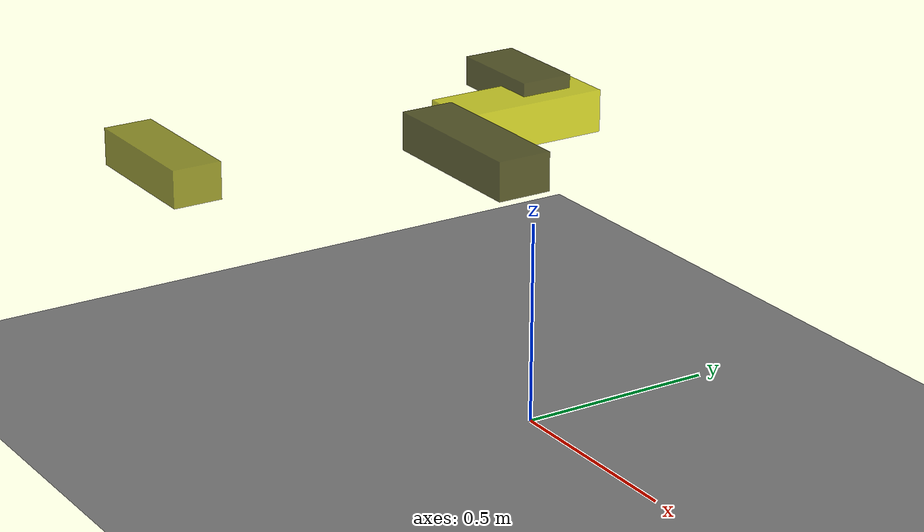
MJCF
<?xml version="1.0"?>
<mujoco model="obstacle_scene">
  <compiler angle="radian" coordinate="local"/>
  <option timestep="0.001" gravity="0 0 -9.81"/>

  <asset>
    <material name="obstacle_mat" rgba="0.8 0.8 0.0 0.8"/>
    <material name="ground_mat" rgba="0.5 0.5 0.5 1"/>
  </asset>

  <worldbody>
    <!-- Ground plane -->
    <geom name="ground" type="plane" size="3 3 0.1" material="ground_mat"/>

    <!-- Obstacles -->
    <body name="obstacle_0" pos="-0.749781 0.457299 0.562625">
      <geom name="obs_0" type="box" size="0.134191 0.070227 0.038806" rgba="0.2 0.2 0.0 0.8"/>
    </body>
    <body name="obstacle_1" pos="-0.525167 -0.685341 0.621589">
      <geom name="obs_1" type="box" size="0.175486 0.060994 0.045829" rgba="0.5 0.5 0.0 0.8"/>
    </body>
    <body name="obstacle_2" pos="-0.639146 0.380117 0.510526">
      <geom name="obs_2" type="box" size="0.080019 0.203687 0.056009" rgba="0.8 0.8 0.0 0.8"/>
    </body>
    <body name="obstacle_3" pos="0.820288 -0.698676 1.060362">
      <geom name="obs_3" type="box" size="0.168410 0.055111 0.038715" rgba="0.2 0.2 0.0 0.8"/>
    </body>
  </worldbody>
</mujoco>
